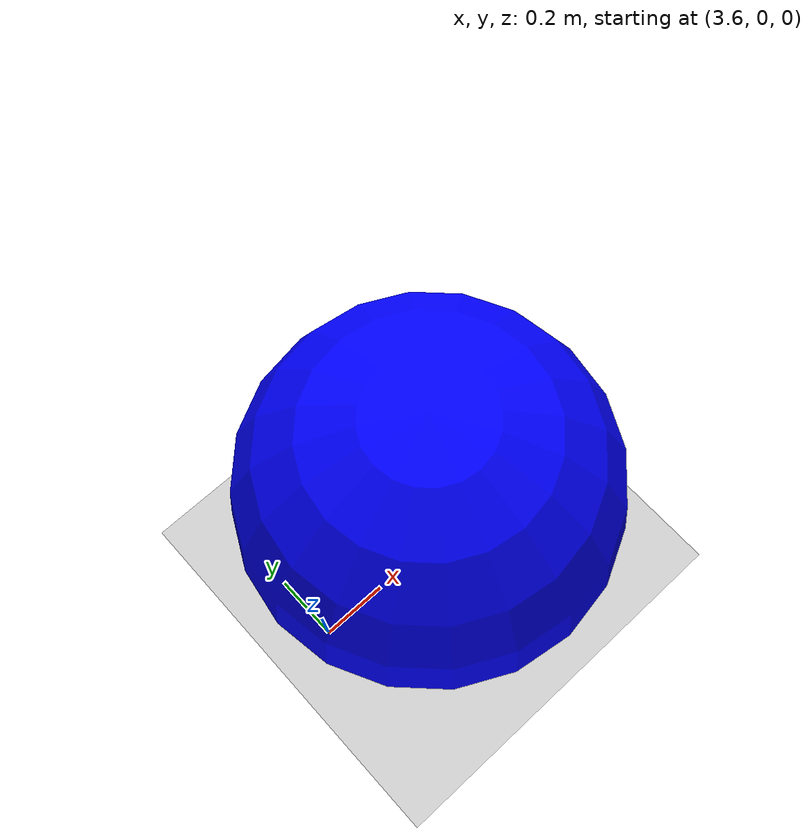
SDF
<?xml version="1.0" ?>

<sdf version="1.6">
  <world name="stereo_sensors">
    <physics name="1ms" type="ignored">
      <max_step_size>0.001</max_step_size>
      <real_time_factor>1.0</real_time_factor>
    </physics>
    <plugin filename="gz-sim-physics-system" name="gz::sim::systems::Physics"/>
    <plugin filename="gz-sim-user-commands-system" name="gz::sim::systems::UserCommands"/>
    <plugin filename="gz-sim-sensors-system" name="gz::sim::systems::Sensors"/>
    <plugin filename="gz-sim-scene-broadcaster-system" name="gz::sim::systems::SceneBroadcaster"/>

    <light type="directional" name="sun">
      <cast_shadows>true</cast_shadows>
      <pose>0 0 10 0 0 0</pose>
      <diffuse>0.8 0.8 0.8 1</diffuse>
      <specular>0.2 0.2 0.2 1</specular>
      <direction>-0.5 0.1 -0.9</direction>
    </light>

    <model name="ground_plane">
      <static>true</static>
      <link name="link">
        <collision name="collision">
          <geometry><plane><normal>0 0 1</normal><size>100 100</size></plane></geometry>
        </collision>
        <visual name="visual">
          <geometry><plane><normal>0 0 1</normal><size>100 100</size></plane></geometry>
          <material><ambient>0.8 0.8 0.8 1</ambient><diffuse>0.8 0.8 0.8 1</diffuse></material>
        </visual>
      </link>
    </model>

    <model name="stereo_camera_model">
      <static>true</static>
      <pose>0 0 0.4 0 0 0</pose>
      <plugin name="gzyarp::StereoDepthCamera" filename="gz-sim-yarp-stereodepthcamera-system">
        <yarpConfigurationString>(parentLinkName camera_link) (leftSensorName left_sensor) (rightSensorName right_sensor) (leftYarpDeviceName stereodepthcamera_left_plugin_device) (rightYarpDeviceName stereodepthcamera_right_plugin_device) (stereoRgbPortName /stereodepthcamera/rgbImage:o)</yarpConfigurationString>
      </plugin>
      <link name="camera_link">
        <sensor name="left_sensor" type="rgbd_camera">
          <pose>0 0.05 0 0 0 0</pose>
          <camera>
            <distortion><k1>0</k1><k2>0</k2><k3>0</k3><p1>0</p1><p2>0</p2><center>160 120</center></distortion>
            <lens><type>pinhole</type><scale_to_hfov>true</scale_to_hfov><intrinsics><fx>277.128</fx><fy>277.128</fy><cx>160</cx><cy>120</cy><s>0</s></intrinsics></lens>
            <horizontal_fov>1.5708</horizontal_fov>
            <image><width>320</width><height>240</height></image>
            <clip><near>0.1</near><far>100</far></clip>
          </camera>
          <always_on>1</always_on>
          <update_rate>30</update_rate>
          <visualize>true</visualize>
        </sensor>
        <sensor name="right_sensor" type="rgbd_camera">
          <pose>0 -0.05 0 0 0 0</pose>
          <camera>
            <distortion><k1>0</k1><k2>0</k2><k3>0</k3><p1>0</p1><p2>0</p2><center>160 120</center></distortion>
            <lens><type>pinhole</type><scale_to_hfov>true</scale_to_hfov><intrinsics><fx>277.128</fx><fy>277.128</fy><cx>160</cx><cy>120</cy><s>0</s></intrinsics></lens>
            <horizontal_fov>1.5708</horizontal_fov>
            <image><width>320</width><height>240</height></image>
            <clip><near>0.1</near><far>100</far></clip>
          </camera>
          <always_on>1</always_on>
          <update_rate>30</update_rate>
          <visualize>true</visualize>
        </sensor>
      </link>
      <plugin name="gzyarp::RobotInterface" filename="gz-sim-yarp-robotinterface-system">
        <yarpRobotInterfaceConfigurationFile>model://stereodepthcamera/model/stereodepthcamera_nws.xml</yarpRobotInterfaceConfigurationFile>
      </plugin>
    </model>

    <model name="sphere">
      <pose>4 0 0.5 0 0 0</pose>
      <link name="link">
        <visual name="visual">
          <geometry><sphere><radius>0.5</radius></sphere></geometry>
          <material><ambient>0 0 1 1</ambient><diffuse>0 0 1 1</diffuse></material>
        </visual>
      </link>
    </model>
  </world>
</sdf>
